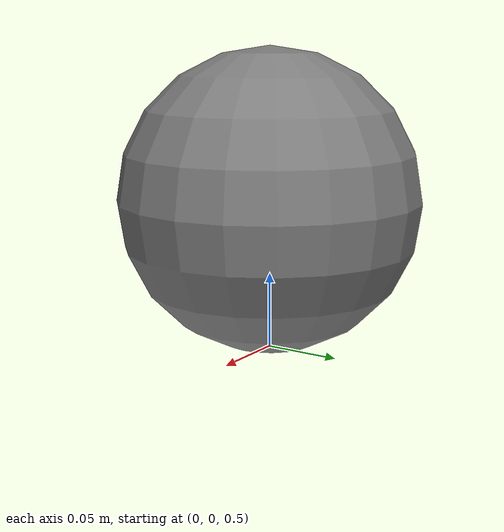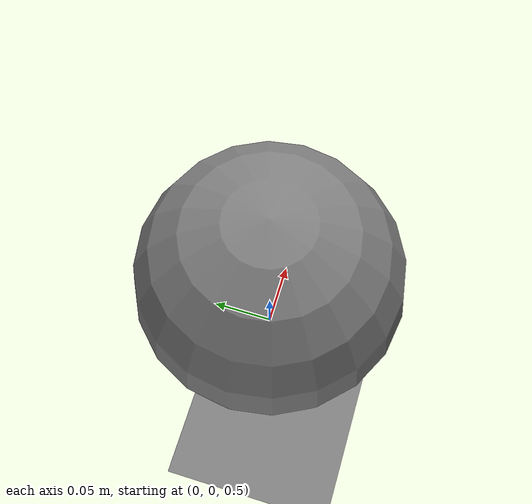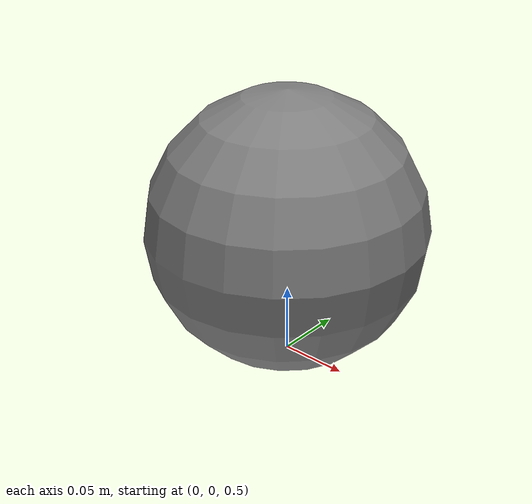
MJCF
<mujoco model="sphere_drop_stiff">
  <compiler angle="radian"/>
  <option timestep="0.002" gravity="0 0 -9.81"
          integrator="RK4" solver="PGS" cone="pyramidal" iterations="20"/>

  <default>
    <geom solref="0.010 1.0"/>
  </default>

  <worldbody>
    <geom name="ground" type="plane" size="5 5 0.1" friction="0.8"/>
    <body name="ball" pos="0 0 0.6">
      <freejoint name="ball_root"/>
      <inertial pos="0 0 0" mass="0.5" diaginertia="0.002 0.002 0.002"/>
      <geom name="ball_sphere" type="sphere" size="0.1" friction="0.8"/>
    </body>
  </worldbody>
</mujoco>
